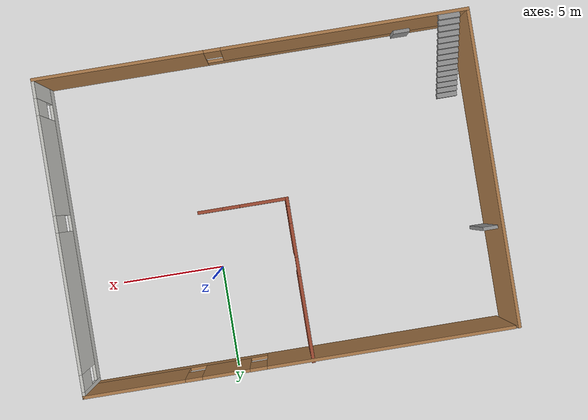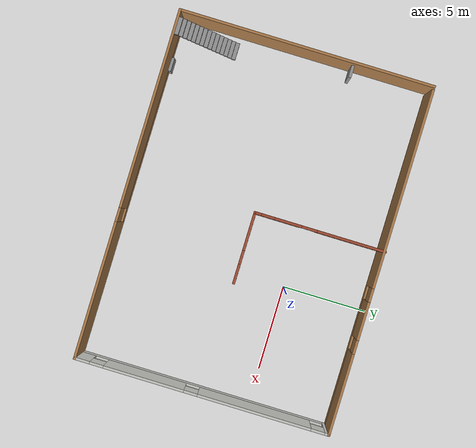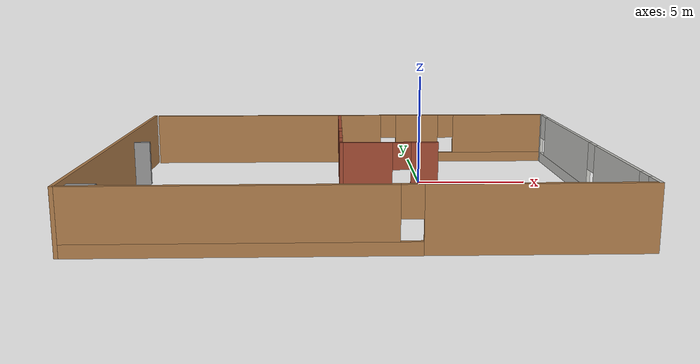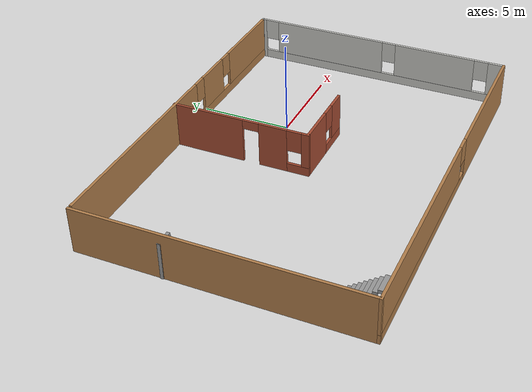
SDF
<?xml version='1.0'?>
<sdf version='1.6'>
  <model name='map_my_world.world'>
    <pose frame=''>-3.13986 -2.69902 0 0 -0 0</pose>
    <link name='Door_0'>
      <collision name='Door_0_Collision'>
        <geometry>
          <box>
            <size>0.9 0.17 2</size>
          </box>
        </geometry>
        <pose frame=''>0 0 1 0 -0 0</pose>
      </collision>
      <visual name='Door_0_Visual'>
        <pose frame=''>0 0 1 0 -0 0</pose>
        <geometry>
          <box>
            <size>0.9 0.17 2</size>
          </box>
        </geometry>
        <material>
          <script>
            <uri>file://media/materials/scripts/gazebo.material</uri>
            <name>Gazebo/Grey</name>
          </script>
        </material>
      </visual>
      <pose frame=''>-9.84195 2.74935 0 0 -0 0</pose>
    </link>
    <link name='Stairs_0'>
      <visual name='Stairs_0_Visual_0'>
        <pose frame=''>-9.28366 -3.99162 0.083333 0 -0 0</pose>
        <geometry>
          <box>
            <size>1 0.233333 0.166667</size>
          </box>
        </geometry>
        <material>
          <script>
            <uri>file://media/materials/scripts/gazebo.material</uri>
            <name>Gazebo/Grey</name>
          </script>
          <ambient>1 1 1 1</ambient>
        </material>
      </visual>
      <collision name='Stairs_0_Collision_0'>
        <geometry>
          <box>
            <size>1 0.233333 0.166667</size>
          </box>
        </geometry>
        <pose frame=''>-9.28366 -3.99162 0.083333 0 -0 0</pose>
      </collision>
      <visual name='Stairs_0_Visual_1'>
        <pose frame=''>-9.28366 -4.22496 0.25 0 -0 0</pose>
        <geometry>
          <box>
            <size>1 0.233333 0.166667</size>
          </box>
        </geometry>
        <material>
          <script>
            <uri>file://media/materials/scripts/gazebo.material</uri>
            <name>Gazebo/Grey</name>
          </script>
          <ambient>1 1 1 1</ambient>
        </material>
      </visual>
      <collision name='Stairs_0_Collision_1'>
        <geometry>
          <box>
            <size>1 0.233333 0.166667</size>
          </box>
        </geometry>
        <pose frame=''>-9.28366 -4.22496 0.25 0 -0 0</pose>
      </collision>
      <visual name='Stairs_0_Visual_2'>
        <pose frame=''>-9.28366 -4.45829 0.416667 0 -0 0</pose>
        <geometry>
          <box>
            <size>1 0.233333 0.166667</size>
          </box>
        </geometry>
        <material>
          <script>
            <uri>file://media/materials/scripts/gazebo.material</uri>
            <name>Gazebo/Grey</name>
          </script>
          <ambient>1 1 1 1</ambient>
        </material>
      </visual>
      <collision name='Stairs_0_Collision_2'>
        <geometry>
          <box>
            <size>1 0.233333 0.166667</size>
          </box>
        </geometry>
        <pose frame=''>-9.28366 -4.45829 0.416667 0 -0 0</pose>
      </collision>
      <visual name='Stairs_0_Visual_3'>
        <pose frame=''>-9.28366 -4.69162 0.583333 0 -0 0</pose>
        <geometry>
          <box>
            <size>1 0.233333 0.166667</size>
          </box>
        </geometry>
        <material>
          <script>
            <uri>file://media/materials/scripts/gazebo.material</uri>
            <name>Gazebo/Grey</name>
          </script>
          <ambient>1 1 1 1</ambient>
        </material>
      </visual>
      <collision name='Stairs_0_Collision_3'>
        <geometry>
          <box>
            <size>1 0.233333 0.166667</size>
          </box>
        </geometry>
        <pose frame=''>-9.28366 -4.69162 0.583333 0 -0 0</pose>
      </collision>
      <visual name='Stairs_0_Visual_4'>
        <pose frame=''>-9.28366 -4.92496 0.75 0 -0 0</pose>
        <geometry>
          <box>
            <size>1 0.233333 0.166667</size>
          </box>
        </geometry>
        <material>
          <script>
            <uri>file://media/materials/scripts/gazebo.material</uri>
            <name>Gazebo/Grey</name>
          </script>
          <ambient>1 1 1 1</ambient>
        </material>
      </visual>
      <collision name='Stairs_0_Collision_4'>
        <geometry>
          <box>
            <size>1 0.233333 0.166667</size>
          </box>
        </geometry>
        <pose frame=''>-9.28366 -4.92496 0.75 0 -0 0</pose>
      </collision>
      <visual name='Stairs_0_Visual_5'>
        <pose frame=''>-9.28366 -5.15829 0.916667 0 -0 0</pose>
        <geometry>
          <box>
            <size>1 0.233333 0.166667</size>
          </box>
        </geometry>
        <material>
          <script>
            <uri>file://media/materials/scripts/gazebo.material</uri>
            <name>Gazebo/Grey</name>
          </script>
          <ambient>1 1 1 1</ambient>
        </material>
      </visual>
      <collision name='Stairs_0_Collision_5'>
        <geometry>
          <box>
            <size>1 0.233333 0.166667</size>
          </box>
        </geometry>
        <pose frame=''>-9.28366 -5.15829 0.916667 0 -0 0</pose>
      </collision>
      <visual name='Stairs_0_Visual_6'>
        <pose frame=''>-9.28366 -5.39162 1.08333 0 -0 0</pose>
        <geometry>
          <box>
            <size>1 0.233333 0.166667</size>
          </box>
        </geometry>
        <material>
          <script>
            <uri>file://media/materials/scripts/gazebo.material</uri>
            <name>Gazebo/Grey</name>
          </script>
          <ambient>1 1 1 1</ambient>
        </material>
      </visual>
      <collision name='Stairs_0_Collision_6'>
        <geometry>
          <box>
            <size>1 0.233333 0.166667</size>
          </box>
        </geometry>
        <pose frame=''>-9.28366 -5.39162 1.08333 0 -0 0</pose>
      </collision>
      <visual name='Stairs_0_Visual_7'>
        <pose frame=''>-9.28366 -5.62496 1.25 0 -0 0</pose>
        <geometry>
          <box>
            <size>1 0.233333 0.166667</size>
          </box>
        </geometry>
        <material>
          <script>
            <uri>file://media/materials/scripts/gazebo.material</uri>
            <name>Gazebo/Grey</name>
          </script>
          <ambient>1 1 1 1</ambient>
        </material>
      </visual>
      <collision name='Stairs_0_Collision_7'>
        <geometry>
          <box>
            <size>1 0.233333 0.166667</size>
          </box>
        </geometry>
        <pose frame=''>-9.28366 -5.62496 1.25 0 -0 0</pose>
      </collision>
      <visual name='Stairs_0_Visual_8'>
        <pose frame=''>-9.28366 -5.85829 1.41667 0 -0 0</pose>
        <geometry>
          <box>
            <size>1 0.233333 0.166667</size>
          </box>
        </geometry>
        <material>
          <script>
            <uri>file://media/materials/scripts/gazebo.material</uri>
            <name>Gazebo/Grey</name>
          </script>
          <ambient>1 1 1 1</ambient>
        </material>
      </visual>
      <collision name='Stairs_0_Collision_8'>
        <geometry>
          <box>
            <size>1 0.233333 0.166667</size>
          </box>
        </geometry>
        <pose frame=''>-9.28366 -5.85829 1.41667 0 -0 0</pose>
      </collision>
      <visual name='Stairs_0_Visual_9'>
        <pose frame=''>-9.28366 -6.09162 1.58333 0 -0 0</pose>
        <geometry>
          <box>
            <size>1 0.233333 0.166667</size>
          </box>
        </geometry>
        <material>
          <script>
            <uri>file://media/materials/scripts/gazebo.material</uri>
            <name>Gazebo/Grey</name>
          </script>
          <ambient>1 1 1 1</ambient>
        </material>
      </visual>
      <collision name='Stairs_0_Collision_9'>
        <geometry>
          <box>
            <size>1 0.233333 0.166667</size>
          </box>
        </geometry>
        <pose frame=''>-9.28366 -6.09162 1.58333 0 -0 0</pose>
      </collision>
      <visual name='Stairs_0_Visual_10'>
        <pose frame=''>-9.28366 -6.32496 1.75 0 -0 0</pose>
        <geometry>
          <box>
            <size>1 0.233333 0.166667</size>
          </box>
        </geometry>
        <material>
          <script>
            <uri>file://media/materials/scripts/gazebo.material</uri>
            <name>Gazebo/Grey</name>
          </script>
          <ambient>1 1 1 1</ambient>
        </material>
      </visual>
      <collision name='Stairs_0_Collision_10'>
        <geometry>
          <box>
            <size>1 0.233333 0.166667</size>
          </box>
        </geometry>
        <pose frame=''>-9.28366 -6.32496 1.75 0 -0 0</pose>
      </collision>
      <visual name='Stairs_0_Visual_11'>
        <pose frame=''>-9.28366 -6.55829 1.91667 0 -0 0</pose>
        <geometry>
          <box>
            <size>1 0.233333 0.166667</size>
          </box>
        </geometry>
        <material>
          <script>
            <uri>file://media/materials/scripts/gazebo.material</uri>
            <name>Gazebo/Grey</name>
          </script>
          <ambient>1 1 1 1</ambient>
        </material>
      </visual>
      <collision name='Stairs_0_Collision_11'>
        <geometry>
          <box>
            <size>1 0.233333 0.166667</size>
          </box>
        </geometry>
        <pose frame=''>-9.28366 -6.55829 1.91667 0 -0 0</pose>
      </collision>
      <visual name='Stairs_0_Visual_12'>
        <pose frame=''>-9.28366 -6.79162 2.08333 0 -0 0</pose>
        <geometry>
          <box>
            <size>1 0.233333 0.166667</size>
          </box>
        </geometry>
        <material>
          <script>
            <uri>file://media/materials/scripts/gazebo.material</uri>
            <name>Gazebo/Grey</name>
          </script>
          <ambient>1 1 1 1</ambient>
        </material>
      </visual>
      <collision name='Stairs_0_Collision_12'>
        <geometry>
          <box>
            <size>1 0.233333 0.166667</size>
          </box>
        </geometry>
        <pose frame=''>-9.28366 -6.79162 2.08333 0 -0 0</pose>
      </collision>
      <visual name='Stairs_0_Visual_13'>
        <pose frame=''>-9.28366 -7.02496 2.25 0 -0 0</pose>
        <geometry>
          <box>
            <size>1 0.233333 0.166667</size>
          </box>
        </geometry>
        <material>
          <script>
            <uri>file://media/materials/scripts/gazebo.material</uri>
            <name>Gazebo/Grey</name>
          </script>
          <ambient>1 1 1 1</ambient>
        </material>
      </visual>
      <collision name='Stairs_0_Collision_13'>
        <geometry>
          <box>
            <size>1 0.233333 0.166667</size>
          </box>
        </geometry>
        <pose frame=''>-9.28366 -7.02496 2.25 0 -0 0</pose>
      </collision>
      <visual name='Stairs_0_Visual_14'>
        <pose frame=''>-9.28366 -7.25829 2.41667 0 -0 0</pose>
        <geometry>
          <box>
            <size>1 0.233333 0.166667</size>
          </box>
        </geometry>
        <material>
          <script>
            <uri>file://media/materials/scripts/gazebo.material</uri>
            <name>Gazebo/Grey</name>
          </script>
          <ambient>1 1 1 1</ambient>
        </material>
      </visual>
      <collision name='Stairs_0_Collision_14'>
        <geometry>
          <box>
            <size>1 0.233333 0.166667</size>
          </box>
        </geometry>
        <pose frame=''>-9.28366 -7.25829 2.41667 0 -0 0</pose>
      </collision>
    </link>
    <link name='Wall_11'>
      <pose frame=''>0.115 7.40174 0 0 -0 0</pose>
      <visual name='Wall_11_Visual_0'>
        <pose frame=''>-4.30918 0 1.25 0 -0 0</pose>
        <geometry>
          <box>
            <size>11.6316 0.15 2.5</size>
          </box>
        </geometry>
        <material>
          <script>
            <uri>file://media/materials/scripts/gazebo.material</uri>
            <name>Gazebo/Wood</name>
          </script>
          <ambient>0.435294 0.796078 0.67451 1</ambient>
        </material>
      </visual>
      <collision name='Wall_11_Collision_0'>
        <geometry>
          <box>
            <size>11.6316 0.15 2.5</size>
          </box>
        </geometry>
        <pose frame=''>-4.30918 0 1.25 0 -0 0</pose>
      </collision>
      <visual name='Wall_11_Visual_1'>
        <pose frame=''>5.81582 0 0.25 0 -0 0</pose>
        <geometry>
          <box>
            <size>8.61835 0.15 0.5</size>
          </box>
        </geometry>
        <material>
          <script>
            <uri>file://media/materials/scripts/gazebo.material</uri>
            <name>Gazebo/Wood</name>
          </script>
          <ambient>0.435294 0.796078 0.67451 1</ambient>
        </material>
      </visual>
      <collision name='Wall_11_Collision_1'>
        <geometry>
          <box>
            <size>8.61835 0.15 0.5</size>
          </box>
        </geometry>
        <pose frame=''>5.81582 0 0.25 0 -0 0</pose>
      </collision>
      <visual name='Wall_11_Visual_2'>
        <pose frame=''>3.41867 0 1.5 0 -0 0</pose>
        <geometry>
          <box>
            <size>2.22405 0.15 2</size>
          </box>
        </geometry>
        <material>
          <script>
            <uri>file://media/materials/scripts/gazebo.material</uri>
            <name>Gazebo/Wood</name>
          </script>
          <ambient>0.435294 0.796078 0.67451 1</ambient>
        </material>
      </visual>
      <collision name='Wall_11_Collision_2'>
        <geometry>
          <box>
            <size>2.22405 0.15 2</size>
          </box>
        </geometry>
        <pose frame=''>3.41867 0 1.5 0 -0 0</pose>
      </collision>
      <visual name='Wall_11_Visual_3'>
        <pose frame=''>7.72785 0 1.5 0 -0 0</pose>
        <geometry>
          <box>
            <size>4.7943 0.15 2</size>
          </box>
        </geometry>
        <material>
          <script>
            <uri>file://media/materials/scripts/gazebo.material</uri>
            <name>Gazebo/Wood</name>
          </script>
          <ambient>0.435294 0.796078 0.67451 1</ambient>
        </material>
      </visual>
      <collision name='Wall_11_Collision_3'>
        <geometry>
          <box>
            <size>4.7943 0.15 2</size>
          </box>
        </geometry>
        <pose frame=''>7.72785 0 1.5 0 -0 0</pose>
      </collision>
      <visual name='Wall_11_Visual_4'>
        <pose frame=''>1.90665 0 1.9 0 -0 0</pose>
        <geometry>
          <box>
            <size>0.8 0.15 1.2</size>
          </box>
        </geometry>
        <material>
          <script>
            <uri>file://media/materials/scripts/gazebo.material</uri>
            <name>Gazebo/Wood</name>
          </script>
          <ambient>0.435294 0.796078 0.67451 1</ambient>
        </material>
      </visual>
      <collision name='Wall_11_Collision_4'>
        <geometry>
          <box>
            <size>0.8 0.15 1.2</size>
          </box>
        </geometry>
        <pose frame=''>1.90665 0 1.9 0 -0 0</pose>
      </collision>
      <visual name='Wall_11_Visual_5'>
        <pose frame=''>4.9307 0 1.9 0 -0 0</pose>
        <geometry>
          <box>
            <size>0.8 0.15 1.2</size>
          </box>
        </geometry>
        <material>
          <script>
            <uri>file://media/materials/scripts/gazebo.material</uri>
            <name>Gazebo/Wood</name>
          </script>
          <ambient>0.435294 0.796078 0.67451 1</ambient>
        </material>
      </visual>
      <collision name='Wall_11_Collision_5'>
        <geometry>
          <box>
            <size>0.8 0.15 1.2</size>
          </box>
        </geometry>
        <pose frame=''>4.9307 0 1.9 0 -0 0</pose>
      </collision>
    </link>
    <link name='Wall_12'>
      <collision name='Wall_12_Collision'>
        <geometry>
          <box>
            <size>0.16 0.15 2.5</size>
          </box>
        </geometry>
        <pose frame=''>0 0 1.25 0 -0 0</pose>
      </collision>
      <visual name='Wall_12_Visual'>
        <pose frame=''>0 0 1.25 0 -0 0</pose>
        <geometry>
          <box>
            <size>0.16 0.15 2.5</size>
          </box>
        </geometry>
        <material>
          <script>
            <uri>file://media/materials/scripts/gazebo.material</uri>
            <name>Gazebo/Grey</name>
          </script>
          <ambient>1 1 1 1</ambient>
        </material>
      </visual>
      <pose frame=''>10.17 7.40174 0 0 -0 0</pose>
    </link>
    <link name='Wall_13'>
      <pose frame=''>10.175 -0.023262 0 0 0 -1.5708</pose>
      <visual name='Wall_13_Visual_0'>
        <pose frame=''>-7.33683 0 1.25 0 -0 0</pose>
        <geometry>
          <box>
            <size>0.326335 0.15 2.5</size>
          </box>
        </geometry>
        <material>
          <script>
            <uri>file://media/materials/scripts/gazebo.material</uri>
            <name>Gazebo/CeilingTiled</name>
          </script>
          <ambient>1 1 1 1</ambient>
        </material>
      </visual>
      <collision name='Wall_13_Collision_0'>
        <geometry>
          <box>
            <size>0.326335 0.15 2.5</size>
          </box>
        </geometry>
        <pose frame=''>-7.33683 0 1.25 0 -0 0</pose>
      </collision>
      <visual name='Wall_13_Visual_1'>
        <pose frame=''>0.163168 0 0.25 0 -0 0</pose>
        <geometry>
          <box>
            <size>14.6737 0.15 0.5</size>
          </box>
        </geometry>
        <material>
          <script>
            <uri>file://media/materials/scripts/gazebo.material</uri>
            <name>Gazebo/CeilingTiled</name>
          </script>
          <ambient>1 1 1 1</ambient>
        </material>
      </visual>
      <collision name='Wall_13_Collision_1'>
        <geometry>
          <box>
            <size>14.6737 0.15 0.5</size>
          </box>
        </geometry>
        <pose frame=''>0.163168 0 0.25 0 -0 0</pose>
      </collision>
      <visual name='Wall_13_Visual_2'>
        <pose frame=''>-3.05175 0 1.5 0 -0 0</pose>
        <geometry>
          <box>
            <size>6.64383 0.15 2</size>
          </box>
        </geometry>
        <material>
          <script>
            <uri>file://media/materials/scripts/gazebo.material</uri>
            <name>Gazebo/CeilingTiled</name>
          </script>
          <ambient>1 1 1 1</ambient>
        </material>
      </visual>
      <collision name='Wall_13_Collision_2'>
        <geometry>
          <box>
            <size>6.64383 0.15 2</size>
          </box>
        </geometry>
        <pose frame=''>-3.05175 0 1.5 0 -0 0</pose>
      </collision>
      <visual name='Wall_13_Visual_3'>
        <pose frame=''>3.41507 0 1.5 0 -0 0</pose>
        <geometry>
          <box>
            <size>4.68982 0.15 2</size>
          </box>
        </geometry>
        <material>
          <script>
            <uri>file://media/materials/scripts/gazebo.material</uri>
            <name>Gazebo/CeilingTiled</name>
          </script>
          <ambient>1 1 1 1</ambient>
        </material>
      </visual>
      <collision name='Wall_13_Collision_3'>
        <geometry>
          <box>
            <size>4.68982 0.15 2</size>
          </box>
        </geometry>
        <pose frame=''>3.41507 0 1.5 0 -0 0</pose>
      </collision>
      <visual name='Wall_13_Visual_4'>
        <pose frame=''>7.02999 0 1.5 0 -0 0</pose>
        <geometry>
          <box>
            <size>0.940017 0.15 2</size>
          </box>
        </geometry>
        <material>
          <script>
            <uri>file://media/materials/scripts/gazebo.material</uri>
            <name>Gazebo/CeilingTiled</name>
          </script>
          <ambient>1 1 1 1</ambient>
        </material>
      </visual>
      <collision name='Wall_13_Collision_4'>
        <geometry>
          <box>
            <size>0.940017 0.15 2</size>
          </box>
        </geometry>
        <pose frame=''>7.02999 0 1.5 0 -0 0</pose>
      </collision>
      <visual name='Wall_13_Visual_5'>
        <pose frame=''>-6.77367 0 1.9 0 -0 0</pose>
        <geometry>
          <box>
            <size>0.8 0.15 1.2</size>
          </box>
        </geometry>
        <material>
          <script>
            <uri>file://media/materials/scripts/gazebo.material</uri>
            <name>Gazebo/CeilingTiled</name>
          </script>
          <ambient>1 1 1 1</ambient>
        </material>
      </visual>
      <collision name='Wall_13_Collision_5'>
        <geometry>
          <box>
            <size>0.8 0.15 1.2</size>
          </box>
        </geometry>
        <pose frame=''>-6.77367 0 1.9 0 -0 0</pose>
      </collision>
      <visual name='Wall_13_Visual_6'>
        <pose frame=''>0.670161 0 1.9 0 -0 0</pose>
        <geometry>
          <box>
            <size>0.8 0.15 1.2</size>
          </box>
        </geometry>
        <material>
          <script>
            <uri>file://media/materials/scripts/gazebo.material</uri>
            <name>Gazebo/CeilingTiled</name>
          </script>
          <ambient>1 1 1 1</ambient>
        </material>
      </visual>
      <collision name='Wall_13_Collision_6'>
        <geometry>
          <box>
            <size>0.8 0.15 1.2</size>
          </box>
        </geometry>
        <pose frame=''>0.670161 0 1.9 0 -0 0</pose>
      </collision>
      <visual name='Wall_13_Visual_7'>
        <pose frame=''>6.15998 0 1.9 0 -0 0</pose>
        <geometry>
          <box>
            <size>0.8 0.15 1.2</size>
          </box>
        </geometry>
        <material>
          <script>
            <uri>file://media/materials/scripts/gazebo.material</uri>
            <name>Gazebo/CeilingTiled</name>
          </script>
          <ambient>1 1 1 1</ambient>
        </material>
      </visual>
      <collision name='Wall_13_Collision_7'>
        <geometry>
          <box>
            <size>0.8 0.15 1.2</size>
          </box>
        </geometry>
        <pose frame=''>6.15998 0 1.9 0 -0 0</pose>
      </collision>
    </link>
    <link name='Wall_14'>
      <pose frame=''>0 -7.44826 0 0 -0 3.14159</pose>
      <visual name='Wall_14_Visual_0'>
        <pose frame=''>-6.21951 0 1.25 0 -0 0</pose>
        <geometry>
          <box>
            <size>8.06097 0.15 2.5</size>
          </box>
        </geometry>
        <material>
          <script>
            <uri>file://media/materials/scripts/gazebo.material</uri>
            <name>Gazebo/Wood</name>
          </script>
          <ambient>1 1 1 1</ambient>
        </material>
      </visual>
      <collision name='Wall_14_Collision_0'>
        <geometry>
          <box>
            <size>8.06097 0.15 2.5</size>
          </box>
        </geometry>
        <pose frame=''>-6.21951 0 1.25 0 -0 0</pose>
      </collision>
      <visual name='Wall_14_Visual_1'>
        <pose frame=''>4.03049 0 0.25 0 -0 0</pose>
        <geometry>
          <box>
            <size>12.439 0.15 0.5</size>
          </box>
        </geometry>
        <material>
          <script>
            <uri>file://media/materials/scripts/gazebo.material</uri>
            <name>Gazebo/Wood</name>
          </script>
          <ambient>1 1 1 1</ambient>
        </material>
      </visual>
      <collision name='Wall_14_Collision_1'>
        <geometry>
          <box>
            <size>12.439 0.15 0.5</size>
          </box>
        </geometry>
        <pose frame=''>4.03049 0 0.25 0 -0 0</pose>
      </collision>
      <visual name='Wall_14_Visual_2'>
        <pose frame=''>4.43049 0 1.5 0 -0 0</pose>
        <geometry>
          <box>
            <size>11.639 0.15 2</size>
          </box>
        </geometry>
        <material>
          <script>
            <uri>file://media/materials/scripts/gazebo.material</uri>
            <name>Gazebo/Wood</name>
          </script>
          <ambient>1 1 1 1</ambient>
        </material>
      </visual>
      <collision name='Wall_14_Collision_2'>
        <geometry>
          <box>
            <size>11.639 0.15 2</size>
          </box>
        </geometry>
        <pose frame=''>4.43049 0 1.5 0 -0 0</pose>
      </collision>
      <visual name='Wall_14_Visual_3'>
        <pose frame=''>-1.78903 0 1.9 0 -0 0</pose>
        <geometry>
          <box>
            <size>0.8 0.15 1.2</size>
          </box>
        </geometry>
        <material>
          <script>
            <uri>file://media/materials/scripts/gazebo.material</uri>
            <name>Gazebo/Wood</name>
          </script>
          <ambient>1 1 1 1</ambient>
        </material>
      </visual>
      <collision name='Wall_14_Collision_3'>
        <geometry>
          <box>
            <size>0.8 0.15 1.2</size>
          </box>
        </geometry>
        <pose frame=''>-1.78903 0 1.9 0 -0 0</pose>
      </collision>
    </link>
    <link name='Wall_15'>
      <collision name='Wall_15_Collision'>
        <geometry>
          <box>
            <size>15 0.15 2.5</size>
          </box>
        </geometry>
        <pose frame=''>0 0 1.25 0 -0 0</pose>
      </collision>
      <visual name='Wall_15_Visual'>
        <pose frame=''>0 0 1.25 0 -0 0</pose>
        <geometry>
          <box>
            <size>15 0.15 2.5</size>
          </box>
        </geometry>
        <material>
          <script>
            <uri>file://media/materials/scripts/gazebo.material</uri>
            <name>Gazebo/Wood</name>
          </script>
          <ambient>0.435294 0.796078 0.67451 1</ambient>
        </material>
      </visual>
      <pose frame=''>-10.175 -0.023262 0 0 -0 1.5708</pose>
    </link>
    <link name='Wall_17'>
      <pose frame=''>-0.537169 3.64826 0 0 0 -1.5708</pose>
      <visual name='Wall_17_Visual_0'>
        <pose frame=''>-1.85261 0 1.25 0 -0 0</pose>
        <geometry>
          <box>
            <size>4.04477 0.15 2.5</size>
          </box>
        </geometry>
        <material>
          <script>
            <uri>file://media/materials/scripts/gazebo.material</uri>
            <name>Gazebo/Bricks</name>
          </script>
          <ambient>1 1 1 1</ambient>
        </material>
      </visual>
      <collision name='Wall_17_Collision_0'>
        <geometry>
          <box>
            <size>4.04477 0.15 2.5</size>
          </box>
        </geometry>
        <pose frame=''>-1.85261 0 1.25 0 -0 0</pose>
      </collision>
      <visual name='Wall_17_Visual_1'>
        <pose frame=''>1.85439 0 1.25 0 -0 0</pose>
        <geometry>
          <box>
            <size>1.56924 0.15 2.5</size>
          </box>
        </geometry>
        <material>
          <script>
            <uri>file://media/materials/scripts/gazebo.material</uri>
            <name>Gazebo/Bricks</name>
          </script>
          <ambient>1 1 1 1</ambient>
        </material>
      </visual>
      <collision name='Wall_17_Collision_1'>
        <geometry>
          <box>
            <size>1.56924 0.15 2.5</size>
          </box>
        </geometry>
        <pose frame=''>1.85439 0 1.25 0 -0 0</pose>
      </collision>
      <visual name='Wall_17_Visual_2'>
        <pose frame=''>3.25701 0 0.25 0 -0 0</pose>
        <geometry>
          <box>
            <size>1.23598 0.15 0.5</size>
          </box>
        </geometry>
        <material>
          <script>
            <uri>file://media/materials/scripts/gazebo.material</uri>
            <name>Gazebo/Bricks</name>
          </script>
          <ambient>1 1 1 1</ambient>
        </material>
      </visual>
      <collision name='Wall_17_Collision_2'>
        <geometry>
          <box>
            <size>1.23598 0.15 0.5</size>
          </box>
        </geometry>
        <pose frame=''>3.25701 0 0.25 0 -0 0</pose>
      </collision>
      <visual name='Wall_17_Visual_3'>
        <pose frame=''>3.65701 0 1.5 0 -0 0</pose>
        <geometry>
          <box>
            <size>0.435985 0.15 2</size>
          </box>
        </geometry>
        <material>
          <script>
            <uri>file://media/materials/scripts/gazebo.material</uri>
            <name>Gazebo/Bricks</name>
          </script>
          <ambient>1 1 1 1</ambient>
        </material>
      </visual>
      <collision name='Wall_17_Collision_3'>
        <geometry>
          <box>
            <size>0.435985 0.15 2</size>
          </box>
        </geometry>
        <pose frame=''>3.65701 0 1.5 0 -0 0</pose>
      </collision>
      <visual name='Wall_17_Visual_4'>
        <pose frame=''>3.03902 0 1.9 0 -0 0</pose>
        <geometry>
          <box>
            <size>0.8 0.15 1.2</size>
          </box>
        </geometry>
        <material>
          <script>
            <uri>file://media/materials/scripts/gazebo.material</uri>
            <name>Gazebo/Bricks</name>
          </script>
          <ambient>1 1 1 1</ambient>
        </material>
      </visual>
      <collision name='Wall_17_Collision_4'>
        <geometry>
          <box>
            <size>0.8 0.15 1.2</size>
          </box>
        </geometry>
        <pose frame=''>3.03902 0 1.9 0 -0 0</pose>
      </collision>
      <visual name='Wall_17_Visual_5'>
        <pose frame=''>0.619772 0 2.25 0 -0 0</pose>
        <geometry>
          <box>
            <size>0.9 0.15 0.5</size>
          </box>
        </geometry>
        <material>
          <script>
            <uri>file://media/materials/scripts/gazebo.material</uri>
            <name>Gazebo/Bricks</name>
          </script>
          <ambient>1 1 1 1</ambient>
        </material>
      </visual>
      <collision name='Wall_17_Collision_5'>
        <geometry>
          <box>
            <size>0.9 0.15 0.5</size>
          </box>
        </geometry>
        <pose frame=''>0.619772 0 2.25 0 -0 0</pose>
      </collision>
    </link>
    <link name='Wall_18'>
      <pose frame=''>1.51283 -0.151738 0 0 -0 0</pose>
      <visual name='Wall_18_Visual_0'>
        <pose frame=''>-0.98483 0 1.25 0 -0 0</pose>
        <geometry>
          <box>
            <size>2.28034 0.15 2.5</size>
          </box>
        </geometry>
        <material>
          <script>
            <uri>file://media/materials/scripts/gazebo.material</uri>
            <name>Gazebo/Bricks</name>
          </script>
          <ambient>1 1 1 1</ambient>
        </material>
      </visual>
      <collision name='Wall_18_Collision_0'>
        <geometry>
          <box>
            <size>2.28034 0.15 2.5</size>
          </box>
        </geometry>
        <pose frame=''>-0.98483 0 1.25 0 -0 0</pose>
      </collision>
      <visual name='Wall_18_Visual_1'>
        <pose frame=''>1.14017 0 0.25 0 -0 0</pose>
        <geometry>
          <box>
            <size>1.96966 0.15 0.5</size>
          </box>
        </geometry>
        <material>
          <script>
            <uri>file://media/materials/scripts/gazebo.material</uri>
            <name>Gazebo/Bricks</name>
          </script>
          <ambient>1 1 1 1</ambient>
        </material>
      </visual>
      <collision name='Wall_18_Collision_1'>
        <geometry>
          <box>
            <size>1.96966 0.15 0.5</size>
          </box>
        </geometry>
        <pose frame=''>1.14017 0 0.25 0 -0 0</pose>
      </collision>
      <visual name='Wall_18_Visual_2'>
        <pose frame=''>1.54017 0 1.5 0 -0 0</pose>
        <geometry>
          <box>
            <size>1.16966 0.15 2</size>
          </box>
        </geometry>
        <material>
          <script>
            <uri>file://media/materials/scripts/gazebo.material</uri>
            <name>Gazebo/Bricks</name>
          </script>
          <ambient>1 1 1 1</ambient>
        </material>
      </visual>
      <collision name='Wall_18_Collision_2'>
        <geometry>
          <box>
            <size>1.16966 0.15 2</size>
          </box>
        </geometry>
        <pose frame=''>1.54017 0 1.5 0 -0 0</pose>
      </collision>
      <visual name='Wall_18_Visual_3'>
        <pose frame=''>0.555339 0 1.9 0 -0 0</pose>
        <geometry>
          <box>
            <size>0.8 0.15 1.2</size>
          </box>
        </geometry>
        <material>
          <script>
            <uri>file://media/materials/scripts/gazebo.material</uri>
            <name>Gazebo/Bricks</name>
          </script>
          <ambient>1 1 1 1</ambient>
        </material>
      </visual>
      <collision name='Wall_18_Collision_3'>
        <geometry>
          <box>
            <size>0.8 0.15 1.2</size>
          </box>
        </geometry>
        <pose frame=''>0.555339 0 1.9 0 -0 0</pose>
      </collision>
    </link>
    <link name='Window_1'>
      <collision name='Window_1_Collision'>
        <geometry>
          <box>
            <size>0.8 0.17 0.8</size>
          </box>
        </geometry>
        <pose frame=''>0 0 0.4 0 -0 0</pose>
      </collision>
      <visual name='Window_1_Visual'>
        <pose frame=''>0 0 0.4 0 -0 0</pose>
        <geometry>
          <box>
            <size>0.8 0.17 0.8</size>
          </box>
        </geometry>
        <material>
          <script>
            <uri>file://media/materials/scripts/gazebo.material</uri>
            <name>Gazebo/Grey</name>
          </script>
        </material>
      </visual>
      <pose frame=''>-7.28314 -7.20677 0.5 0 -0 0</pose>
    </link>
    <static>1</static>
  </model>
</sdf>
